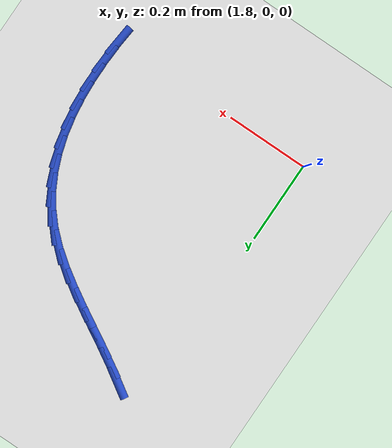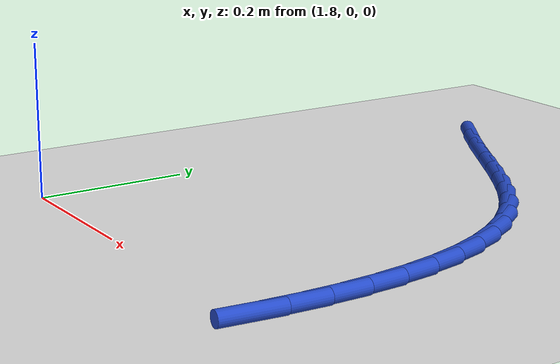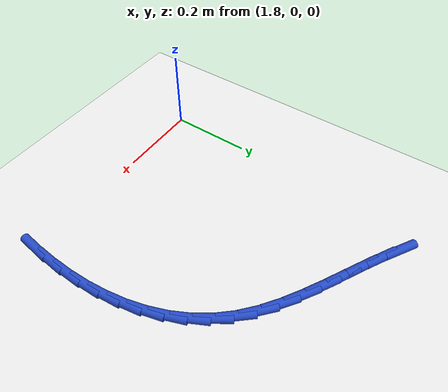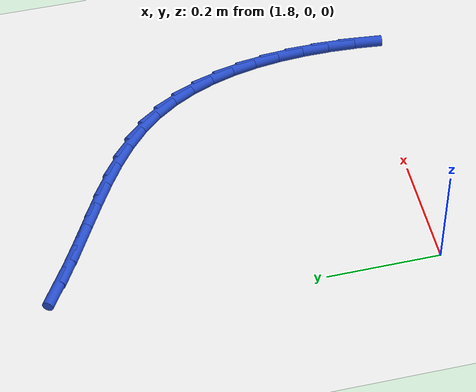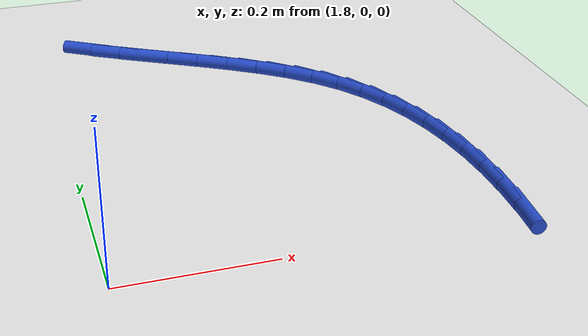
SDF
<sdf version="1.6">
 <world name="default">
  <model name="ground_plane">
   <static>1</static>
   <link name="link">
    <collision name="collision">
     <geometry><plane><normal>0 0 1</normal><size>100 100</size></plane></geometry>
     <surface><friction><ode><mu>100</mu><mu2>50</mu2></ode></friction></surface>
    </collision>
    <visual name="visual">
     <cast_shadows>0</cast_shadows>
     <geometry><plane><normal>0 0 1</normal><size>100 100</size></plane></geometry>
     <material>
      <script><uri>file://media/materials/scripts/gazebo.material</uri><name>Gazebo/WhiteGlow</name></script>
     </material>
    </visual>
   </link>
  </model>
  <model name="line">
   <link name="link_57">
    <pose>1.87319657506179 0.6462639954030939 0.01 0 1.57 -0.5711431461572496</pose>
    <collision name="collision">
     <geometry><cylinder><radius>0.01</radius><length>0.08</length></cylinder></geometry>
    </collision>
    <visual name="visual">
     <material>
      <script><name>Gazebo/Blue</name><uri>file://media/materials/scripts/gazebo.material</uri></script>
     </material>
     <geometry><cylinder><radius>0.01</radius><length>0.08</length></cylinder></geometry>
    </visual>
   </link>
   <link name="link_58">
    <pose>1.914108567910837 0.6199746634441664 0.01 0 1.57 -0.5358050058602176</pose>
    <collision name="collision">
     <geometry><cylinder><radius>0.01</radius><length>0.08</length></cylinder></geometry>
    </collision>
    <visual name="visual">
     <material>
      <script><name>Gazebo/Blue</name><uri>file://media/materials/scripts/gazebo.material</uri></script>
     </material>
     <geometry><cylinder><radius>0.01</radius><length>0.08</length></cylinder></geometry>
    </visual>
   </link>
   <link name="link_59">
    <pose>1.9563556236836654 0.5948908301848832 0.01 0 1.57 -0.5197449529511883</pose>
    <collision name="collision">
     <geometry><cylinder><radius>0.01</radius><length>0.08</length></cylinder></geometry>
    </collision>
    <visual name="visual">
     <material>
      <script><name>Gazebo/Blue</name><uri>file://media/materials/scripts/gazebo.material</uri></script>
     </material>
     <geometry><cylinder><radius>0.01</radius><length>0.08</length></cylinder></geometry>
    </visual>
   </link>
   <link name="link_60">
    <pose>1.9991208623780035 0.5704195675386408 0.01 0 1.57 -0.5224244251708188</pose>
    <collision name="collision">
     <geometry><cylinder><radius>0.01</radius><length>0.08</length></cylinder></geometry>
    </collision>
    <visual name="visual">
     <material>
      <script><name>Gazebo/Blue</name><uri>file://media/materials/scripts/gazebo.material</uri></script>
     </material>
     <geometry><cylinder><radius>0.01</radius><length>0.08</length></cylinder></geometry>
    </visual>
   </link>
   <link name="link_61">
    <pose>2.041587403991579 0.5459679474188357 0.01 0 1.57 -0.5442219038253484</pose>
    <collision name="collision">
     <geometry><cylinder><radius>0.01</radius><length>0.08</length></cylinder></geometry>
    </collision>
    <visual name="visual">
     <material>
      <script><name>Gazebo/Blue</name><uri>file://media/materials/scripts/gazebo.material</uri></script>
     </material>
     <geometry><cylinder><radius>0.01</radius><length>0.08</length></cylinder></geometry>
    </visual>
   </link>
   <link name="link_62">
    <pose>2.0829383685221208 0.5209430417388642 0.01 0 1.57 -0.5864574783718789</pose>
    <collision name="collision">
     <geometry><cylinder><radius>0.01</radius><length>0.08</length></cylinder></geometry>
    </collision>
    <visual name="visual">
     <material>
      <script><name>Gazebo/Blue</name><uri>file://media/materials/scripts/gazebo.material</uri></script>
     </material>
     <geometry><cylinder><radius>0.01</radius><length>0.08</length></cylinder></geometry>
    </visual>
   </link>
   <link name="link_63">
    <pose>2.122356875967355 0.4947519224121236 0.01 0 1.57 -0.6512810797571525</pose>
    <collision name="collision">
     <geometry><cylinder><radius>0.01</radius><length>0.08</length></cylinder></geometry>
    </collision>
    <visual name="visual">
     <material>
      <script><name>Gazebo/Blue</name><uri>file://media/materials/scripts/gazebo.material</uri></script>
     </material>
     <geometry><cylinder><radius>0.01</radius><length>0.08</length></cylinder></geometry>
    </visual>
   </link>
   <link name="link_64">
    <pose>2.1590260463250104 0.4668016613520102 0.01 0 1.57 -0.7412566819356411</pose>
    <collision name="collision">
     <geometry><cylinder><radius>0.01</radius><length>0.08</length></cylinder></geometry>
    </collision>
    <visual name="visual">
     <material>
      <script><name>Gazebo/Blue</name><uri>file://media/materials/scripts/gazebo.material</uri></script>
     </material>
     <geometry><cylinder><radius>0.01</radius><length>0.08</length></cylinder></geometry>
    </visual>
   </link>
   <link name="link_65">
    <pose>2.192128999592815 0.43649933047192035 0.01 0 1.57 -0.8556403793179593</pose>
    <collision name="collision">
     <geometry><cylinder><radius>0.01</radius><length>0.08</length></cylinder></geometry>
    </collision>
    <visual name="visual">
     <material>
      <script><name>Gazebo/Blue</name><uri>file://media/materials/scripts/gazebo.material</uri></script>
     </material>
     <geometry><cylinder><radius>0.01</radius><length>0.08</length></cylinder></geometry>
    </visual>
   </link>
   <link name="link_66">
    <pose>2.22094229724467 0.4033246872152758 0.01 0 1.57 -0.9748060117624547</pose>
    <collision name="collision">
     <geometry><cylinder><radius>0.01</radius><length>0.08</length></cylinder></geometry>
    </collision>
    <visual name="visual">
     <material>
      <script><name>Gazebo/Blue</name><uri>file://media/materials/scripts/gazebo.material</uri></script>
     </material>
     <geometry><cylinder><radius>0.01</radius><length>0.08</length></cylinder></geometry>
    </visual>
   </link>
   <link name="link_67">
    <pose>2.245398496155504 0.3672677696350328 0.01 0 1.57 -1.087772105616212</pose>
    <collision name="collision">
     <geometry><cylinder><radius>0.01</radius><length>0.08</length></cylinder></geometry>
    </collision>
    <visual name="visual">
     <material>
      <script><name>Gazebo/Blue</name><uri>file://media/materials/scripts/gazebo.material</uri></script>
     </material>
     <geometry><cylinder><radius>0.01</radius><length>0.08</length></cylinder></geometry>
    </visual>
   </link>
   <link name="link_68">
    <pose>2.2657111603057873 0.3285372034097275 0.01 0 1.57 -1.192261541239211</pose>
    <collision name="collision">
     <geometry><cylinder><radius>0.01</radius><length>0.08</length></cylinder></geometry>
    </collision>
    <visual name="visual">
     <material>
      <script><name>Gazebo/Blue</name><uri>file://media/materials/scripts/gazebo.material</uri></script>
     </material>
     <geometry><cylinder><radius>0.01</radius><length>0.08</length></cylinder></geometry>
    </visual>
   </link>
   <link name="link_69">
    <pose>2.2820949230537404 0.2873424460571554 0.01 0 1.57 -1.2870716525226455</pose>
    <collision name="collision">
     <geometry><cylinder><radius>0.01</radius><length>0.08</length></cylinder></geometry>
    </collision>
    <visual name="visual">
     <material>
      <script><name>Gazebo/Blue</name><uri>file://media/materials/scripts/gazebo.material</uri></script>
     </material>
     <geometry><cylinder><radius>0.01</radius><length>0.08</length></cylinder></geometry>
    </visual>
   </link>
   <link name="link_70">
    <pose>2.2947644177575834 0.243892955095112 0.01 0 1.57 -1.371902595737185</pose>
    <collision name="collision">
     <geometry><cylinder><radius>0.01</radius><length>0.08</length></cylinder></geometry>
    </collision>
    <visual name="visual">
     <material>
      <script><name>Gazebo/Blue</name><uri>file://media/materials/scripts/gazebo.material</uri></script>
     </material>
     <geometry><cylinder><radius>0.01</radius><length>0.08</length></cylinder></geometry>
    </visual>
   </link>
   <link name="link_71">
    <pose>2.3039342777755363 0.19839818804139267 0.01 0 1.57 -1.447095940128062</pose>
    <collision name="collision">
     <geometry><cylinder><radius>0.01</radius><length>0.08</length></cylinder></geometry>
    </collision>
    <visual name="visual">
     <material>
      <script><name>Gazebo/Blue</name><uri>file://media/materials/scripts/gazebo.material</uri></script>
     </material>
     <geometry><cylinder><radius>0.01</radius><length>0.08</length></cylinder></geometry>
    </visual>
   </link>
   <link name="link_72">
    <pose>2.3098191364658196 0.15106760241379374 0.01 0 1.57 -1.5133704369451932</pose>
    <collision name="collision">
     <geometry><cylinder><radius>0.01</radius><length>0.08</length></cylinder></geometry>
    </collision>
    <visual name="visual">
     <material>
      <script><name>Gazebo/Blue</name><uri>file://media/materials/scripts/gazebo.material</uri></script>
     </material>
     <geometry><cylinder><radius>0.01</radius><length>0.08</length></cylinder></geometry>
    </visual>
   </link>
   <link name="link_73">
    <pose>2.3126336271866514 0.10211065573011041 0.01 0 1.57 1.5699775710118906</pose>
    <collision name="collision">
     <geometry><cylinder><radius>0.01</radius><length>0.08</length></cylinder></geometry>
    </collision>
    <visual name="visual">
     <material>
      <script><name>Gazebo/Blue</name><uri>file://media/materials/scripts/gazebo.material</uri></script>
     </material>
     <geometry><cylinder><radius>0.01</radius><length>0.08</length></cylinder></geometry>
    </visual>
   </link>
   <link name="link_74">
    <pose>2.312592383296254 0.05173680550813844 0.01 0 1.57 1.5188408438026684</pose>
    <collision name="collision">
     <geometry><cylinder><radius>0.01</radius><length>0.08</length></cylinder></geometry>
    </collision>
    <visual name="visual">
     <material>
      <script><name>Gazebo/Blue</name><uri>file://media/materials/scripts/gazebo.material</uri></script>
     </material>
     <geometry><cylinder><radius>0.01</radius><length>0.08</length></cylinder></geometry>
    </visual>
   </link>
   <link name="link_75">
    <pose>2.3099100381528466 0.00015550926567339807 0.01 0 1.57 1.473936387391252</pose>
    <collision name="collision">
     <geometry><cylinder><radius>0.01</radius><length>0.08</length></cylinder></geometry>
    </collision>
    <visual name="visual">
     <material>
      <script><name>Gazebo/Blue</name><uri>file://media/materials/scripts/gazebo.material</uri></script>
     </material>
     <geometry><cylinder><radius>0.01</radius><length>0.08</length></cylinder></geometry>
    </visual>
   </link>
  </model>
 </world>
</sdf>
